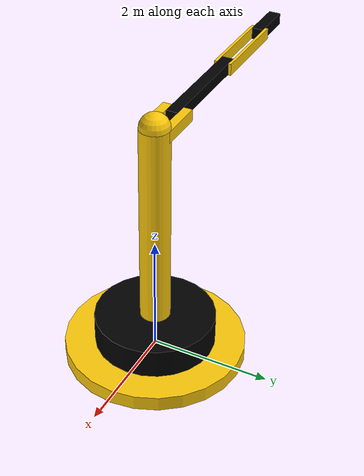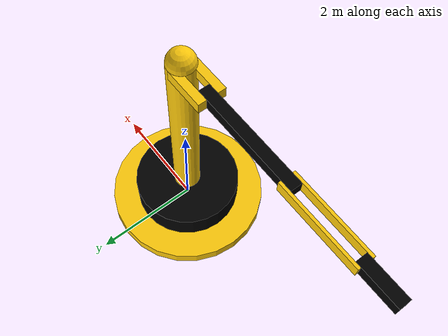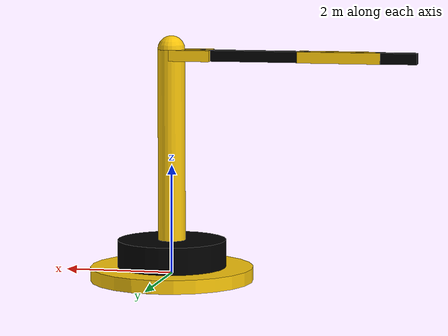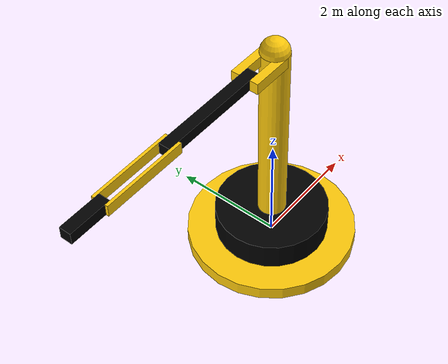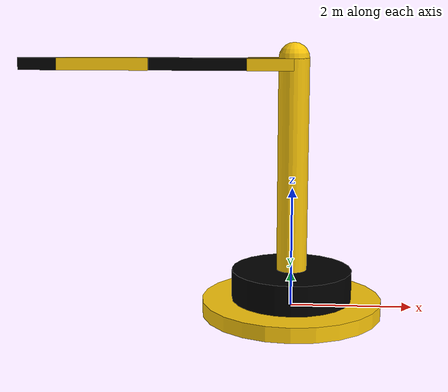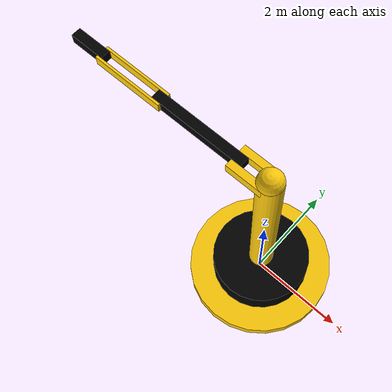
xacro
<?xml version="1.0"?>
<robot name="Golden_Robot" xmlns:xacro="http://www.ros.org/wiki/xacro">

  <!-- ~~~~~~~~~~~~~~~~~~~~~~~~~~~~~~~~~~~~~~ XACROS BEGIN ~~~~~~~~~~~~~~~~~~~~~~~~~~~~~~~~~~~~~~ -->
  <xacro:include filename="$(find home_task_1)/urdf/macros.xacro"/>
  <xacro:include filename="$(find home_task_1)/urdf/parameters.xacro"/>
  <!-- ~~~~~~~~~~~~~~~~~~~~~~~~~~~~~~~~~~~~~~ XACROS END ~~~~~~~~~~~~~~~~~~~~~~~~~~~~~~~~~~~~~~ -->

  <material name="gold">
    <color rgba="0.992 0.788 0.04 1"/>
  </material>
  <material name="black">
    <color rgba="0 0 0 1"/>
  </material>

  <!-- ~~~~~~~~~~~~~~~~~~~~~~~~~~~~~~~~~~~~~~ LINKS BEGIN ~~~~~~~~~~~~~~~~~~~~~~~~~~~~~~~~~~~~~~ -->

  <xacro:full_cylinder name="link 0" length="${l0}" radius="${r0}" rpy="0 0 0" xyz="0 0 0" color="gold" mass="1" ixx="1" ixy="0" ixz="0" iyy="1" iyz="0" izz="1"/>

  <xacro:full_cylinder name="link 1" length="${l1}" radius="${r1}" rpy="0 0 0" xyz="0 0 ${l1 / 2}" color="black" mass="1" ixx="1" ixy="0" ixz="0" iyy="1" iyz="0" izz="1"/>

  <xacro:cylinder_holder name="link 2" length="${l2}" radius="${r2}" rpy="0 0 0" xyz="0 0 ${l2 / 2}" color="gold" mass="1" ixx="1" ixy="0" ixz="0" iyy="1" iyz="0" izz="1" attached_link_width="${y3}" attached_link_height="${z3}" holder_length="${hl}"/>

  <xacro:full_box name="link 3" size="${x3} ${y3} ${z3}" rpy="0 0 0" xyz="${-x3/2} 0 0" color="black" mass="1" ixx="1" ixy="0" ixz="0" iyy="1" iyz="0" izz="1"/>

  <xacro:full_double_box name="link 4" size="${x4} ${y4} ${z4}" rpy="0 0 0" xyz1="${-x4/2} ${(y3/2)+(y4/2)} 0" xyz2="${-x4/2} -${(y3/2)+(y4/2)} 0" color="gold" mass="1" ixx="1" ixy="0" ixz="0" iyy="1" iyz="0" izz="1"/>

   <xacro:full_box name="link 5" size="${x5} ${y5} ${z5}" rpy="0 0 0" xyz="${-x5/2} 0 0" color="black" mass="1" ixx="1" ixy="0" ixz="0" iyy="1" iyz="0" izz="1"/>

  <!-- LINKS END -->

  <!-- ~~~~~~~~~~~~~~~~~~~~~~~~~~~~~~~~~~~~~~ JOINTS BEGIN ~~~~~~~~~~~~~~~~~~~~~~~~~~~~~~~~~~~~~~ -->

  <xacro:continuous_joint name="links-0-1" parent="link 0" child="link 1" origin="0 0 ${l0 / 2}" axis="0 0 1"/>

  <xacro:fixed_joint name="links-1-2" parent="link 1" child="link 2" origin="0 0 ${l1}"/>

  <xacro:revolute_joint name="links-2-3" parent="link 2" child="link 3" origin="-${hl-0.2} 0 ${l2 - (z3/2)}" axis="0 1 0" lower="-${pi/2}" upper="${pi/2}" effort="10" velocity="3"/>

  <xacro:continuous_joint name="links-3-4" parent="link 3" child="link 4" origin="${-x3+0.2} 0 0" axis="0 1 0"/>

  <xacro:continuous_joint name="links-4-5" parent="link 4" child="link 5" origin="${-x4+0.1} 0 0" axis="0 1 0"/>

  <!-- ~~~~~~~~~~~~~~~~~~~~~~~~~~~~~~~~~~~~~~ JOINTS END ~~~~~~~~~~~~~~~~~~~~~~~~~~~~~~~~~~~~~~ -->

 </robot>

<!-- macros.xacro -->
<robot name="Golden_Robot" xmlns:xacro="http://www.ros.org/wiki/xacro">

<xacro:macro name="full_box" params="name size rpy xyz color mass ixx ixy ixz iyy iyz izz">
	<link name="${name}">
		<visual>
			<geometry>
				<box size="${size}"/>
			</geometry>
			<origin rpy="${rpy}" xyz="${xyz}"/>
			<material name="${color}"/>
		</visual>
		<collision>
			<geometry>
				<box size="${size}"/>
			</geometry>
			<origin rpy="${rpy}" xyz="${xyz}"/>
		</collision>
		<inertial>
			<mass value="${mass}"/>
			<inertia ixx="${ixx}" ixy="${ixy}" ixz="${ixz}" iyy="${iyy}" iyz="${iyz}" izz="${izz}"/>
		</inertial>
	</link>
</xacro:macro>

<xacro:macro name="full_double_box" params="name size rpy xyz1 xyz2 color mass ixx ixy ixz iyy iyz izz">
	<link name="${name}">
		<visual>
			<geometry>
				<box size="${size}"/>
			</geometry>
			<origin rpy="${rpy}" xyz="${xyz1}"/>
			<material name="${color}"/>
		</visual>

		<visual>
			<geometry>
				<box size="${size}"/>
			</geometry>
			<origin rpy="${rpy}" xyz="${xyz2}"/>
			<material name="${color}"/>
		</visual>
		<!-- collision begin -->
		<collision>
			<geometry>
				<box size="${size}"/>
			</geometry>
			<origin rpy="${rpy}" xyz="${xyz1}"/>
		</collision>

		<collision>
			<geometry>
				<box size="${size}"/>
			</geometry>
			<origin rpy="${rpy}" xyz="${xyz2}"/>
		</collision>
		<!-- collision end -->

		<inertial>
			<mass value="${mass}"/>
			<inertia ixx="${ixx}" ixy="${ixy}" ixz="${ixz}" iyy="${iyy}" iyz="${iyz}" izz="${izz}"/>
		</inertial>
	</link>
</xacro:macro>

<xacro:macro name="full_cylinder" params="name length radius rpy xyz color mass ixx ixy ixz iyy iyz izz">
	<link name="${name}">
		<visual>
			<geometry>
				<cylinder length="${length}" radius="${radius}"/>
			</geometry>
			<origin rpy="${rpy}" xyz="${xyz}"/>
			<material name="${color}"/>
		</visual>

		<collision>
			<geometry>
				<cylinder length="${length}" radius="${radius}"/>
			</geometry>
			<origin rpy="${rpy}" xyz="${xyz}"/>
		</collision>

		<inertial>
			<mass value="${mass}"/>
			<inertia ixx="${ixx}" ixy="${ixy}" ixz="${ixz}" iyy="${iyy}" iyz="${iyz}" izz="${izz}"/>
		</inertial>
	</link>
</xacro:macro>

<xacro:macro name="cylinder_holder" params="name length radius rpy xyz color mass ixx ixy ixz iyy iyz izz attached_link_width attached_link_height holder_length">
	<link name="${name}">
		<visual>
			<geometry>
				<cylinder length="${length}" radius="${radius}"/>
			</geometry>
			<origin rpy="${rpy}" xyz="${xyz}"/>
			<material name="${color}"/>
		</visual>

		<visual>
			<geometry>
				<box size="${holder_length} ${radius-(attached_link_width/2)} ${attached_link_height}"/>
			</geometry>
			<origin rpy="0 0 0" xyz="-${holder_length/2} ${(attached_link_width+radius-(attached_link_width/2))/2} ${length - (attached_link_height/2)}"/>
			<material name="${color}"/>
		</visual>

		<visual>
			<geometry>
				<box size="${holder_length} ${radius-(attached_link_width/2)} ${attached_link_height}"/>
			</geometry>
			<origin rpy="0 0 0" xyz="-${holder_length/2} -${(attached_link_width+radius-(attached_link_width/2))/2} ${length - (attached_link_height/2)}"/>
			<material name="${color}"/>
		</visual>

		<visual>
			<geometry>
				<sphere radius="${radius}"/>
			</geometry>
			<origin rpy="0 0 0" xyz="0 0 ${length}"/>
			<material name="${color}"/>
		</visual>

		<!-- collision begin -->

		<collision>
			<geometry>
				<cylinder length="${length}" radius="${radius}"/>
			</geometry>
			<origin rpy="${rpy}" xyz="${xyz}"/>
		</collision>

		<collision>
			<geometry>
				<box size="${holder_length} ${radius-(attached_link_width/2)} ${attached_link_height}"/>
			</geometry>
			<origin rpy="0 0 0" xyz="-${holder_length/2} ${(attached_link_width+radius-(attached_link_width/2))/2} ${length - (attached_link_height/2)}"/>
		</collision>

		<collision>
			<geometry>
				<box size="${holder_length} ${radius-(attached_link_width/2)} ${attached_link_height}"/>
			</geometry>
			<origin rpy="0 0 0" xyz="-${holder_length/2} -${(attached_link_width+radius-(attached_link_width/2))/2} ${length - (attached_link_height/2)}"/>
		</collision>

		<collision>
			<geometry>
				<sphere radius="${radius}"/>
			</geometry>
			<origin rpy="0 0 0" xyz="0 0 ${length}"/>
		</collision>

		<!-- collision end -->

		<inertial>
			<mass value="${mass}"/>
			<inertia ixx="${ixx}" ixy="${ixy}" ixz="${ixz}" iyy="${iyy}" iyz="${iyz}" izz="${izz}"/>
		</inertial>
	</link>
</xacro:macro>

<xacro:macro name="continuous_joint" params="name parent child origin axis">
  <joint name="${name}" type="continuous">
		<parent link="${parent}"/>
		<child link="${child}"/>
		<origin xyz="${origin}"/>
		<axis xyz="${axis}"/>
	 </joint>
</xacro:macro>

<xacro:macro name="revolute_joint" params="name parent child origin axis lower upper effort velocity">
  <joint name="${name}" type="revolute">
		<parent link="${parent}"/>
		<child link="${child}"/>
		<origin xyz="${origin}"/>
		<axis xyz="${axis}"/>
		<limit lower="${lower}" upper="${upper}" effort="${effort}" velocity="${velocity}"/>
	 </joint>
</xacro:macro>

<xacro:macro name="fixed_joint" params="name parent child origin">
  <joint name="${name}" type="fixed">
		<parent link="${parent}"/>
		<child link="${child}"/>
		<origin xyz="${origin}"/>
	 </joint>
</xacro:macro>

</robot>

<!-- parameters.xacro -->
<robot name="Golden_Robot" xmlns:xacro="http://www.ros.org/wiki/xacro">

<xacro:property name="pi" value="3.14159265359"/>

<!-- LINK 0 -->
<xacro:property name="l0" value="0.25"/>
<xacro:property name="r0" value="1.5"/>

<!-- LINK 1 -->
<xacro:property name="l1" value="0.5"/>
<xacro:property name="r1" value="1"/>

<!-- LINK 2 -->
<xacro:property name="l2" value="3.5"/>
<xacro:property name="r2" value="0.25"/>
<xacro:property name="hl" value="0.75"/>

<!-- LINK 3 -->
<xacro:property name="x3" value="2"/>
<xacro:property name="y3" value="0.2"/>
<xacro:property name="z3" value="0.2"/>

<!-- LINK 4 -->
<xacro:property name="x4" value="1.5"/>
<xacro:property name="y4" value="0.05"/>
<xacro:property name="z4" value="0.2"/>

<!-- LINK 5 -->
<xacro:property name="x5" value="0.75"/>
<xacro:property name="y5" value="0.2"/>
<xacro:property name="z5" value="0.2"/>

</robot>
